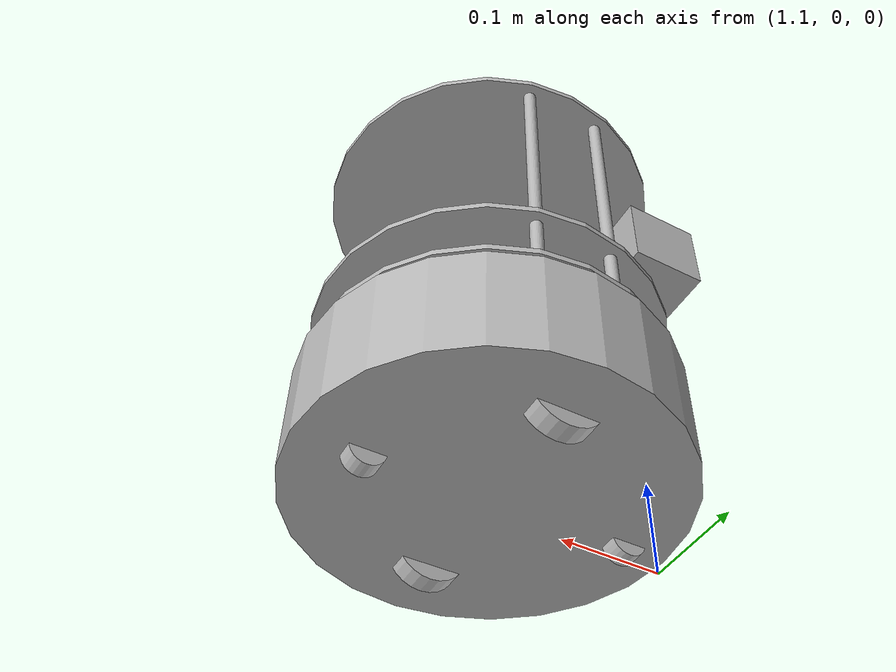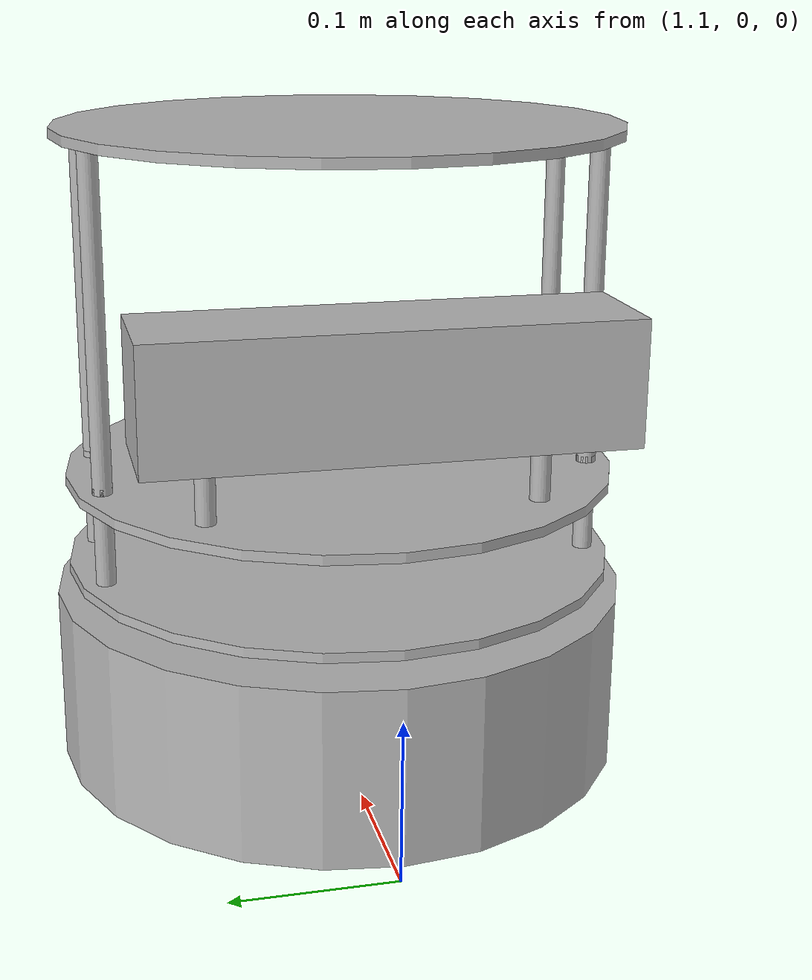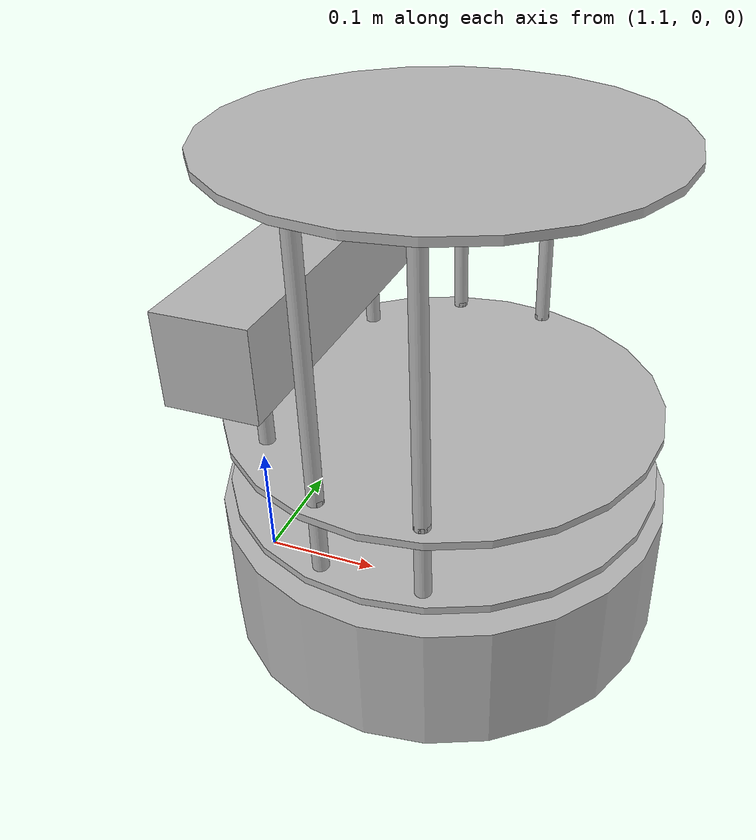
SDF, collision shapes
<?xml version="1.0" ?>
<sdf version="1.4">
  <model name="turtlebot1">
 	<!-- TURTLEBOT 1 -->
      <link name='base_foot1print'>
      <pose>1.27 0 0 0 -0 0</pose>
        <inertial>
          <pose>0.00947362 2.50779e-05 0.014919 0 -0 0</pose>
          <mass>2.4723</mass>
          <inertia>
            <ixx>0.0578436</ixx>
            <ixy>-2.91646e-06</ixy>
            <ixz>0.000317338</ixz>
            <iyy>0.0579316</iyy>
            <iyz>-9.59821e-07</iyz>
            <izz>0.0719963</izz>
          </inertia>
        </inertial>
        <collision name='base_foot1print_collision_base_link'>
          <pose>0 0 0.06969 0 -0 0</pose>
          <geometry>
            <cylinder>
              <length>0.10938</length>
              <radius>0.178</radius>
            </cylinder>
          </geometry>
          <surface>
            <contact>
              <ode/>
            </contact>
            <friction>
              <ode>
                <mu>0.3</mu>
                <mu2>0.3</mu2>
              </ode>
            </friction>
            <bounce/>
          </surface>
          <max_contacts>10</max_contacts>
        </collision>
        <collision name='base_foot1print_collision_camera_link'>
          <pose>-0.118 0 0.2812 0 -0 0</pose>
          <geometry>
            <box>
              <size>0.07271 0.27794 0.073</size>
            </box>
          </geometry>
          <surface>
            <contact>
              <ode/>
            </contact>
            <friction>
              <ode/>
            </friction>
            <bounce/>
          </surface>
          <max_contacts>10</max_contacts>
        </collision>
        <collision name='base_foot1print_collision_caster_back_link'>
          <pose>-0.135 0 0.0192 -1.5708 0 0</pose>
          <geometry>
            <cylinder>
              <length>0.0176</length>
              <radius>0.017</radius>
            </cylinder>
          </geometry>
          <surface>
            <contact>
              <ode>
                <kp>1e+06</kp>
                <kd>100</kd>
                <max_vel>1</max_vel>
                <min_depth>0.001</min_depth>
              </ode>
            </contact>
            <friction>
              <ode>
                <mu>0</mu>
                <mu2>0</mu2>
              </ode>
            </friction>
            <bounce/>
          </surface>
          <max_contacts>10</max_contacts>
        </collision>
        <collision name='base_foot1print_collision_caster_front_link'>
          <pose>0.115 0 0.0172 -1.5708 0 0</pose>
          <geometry>
            <cylinder>
              <length>0.0176</length>
              <radius>0.017</radius>
            </cylinder>
          </geometry>
          <surface>
            <contact>
              <ode>
                <kp>1e+06</kp>
                <kd>100</kd>
                <max_vel>1</max_vel>
                <min_depth>0.001</min_depth>
              </ode>
            </contact>
            <friction>
              <ode>
                <mu>0</mu>
                <mu2>0</mu2>
              </ode>
            </friction>
            <bounce/>
          </surface>
          <max_contacts>10</max_contacts>
        </collision>
        <collision name='base_foot1print_collision_plate_bottom_link'>
          <pose>0 0 0.1408 0 -0 0</pose>
          <geometry>
            <cylinder>
              <length>0.006</length>
              <radius>0.17</radius>
            </cylinder>
          </geometry>
          <max_contacts>10</max_contacts>
          <surface>
            <bounce/>
            <friction>
              <ode/>
            </friction>
            <contact>
              <ode/>
            </contact>
          </surface>
        </collision>
        <collision name='base_foot1print_collision_plate_middle_link'>
          <pose>0 0 0.1976 0 -0 0</pose>
          <geometry>
            <cylinder>
              <length>0.006</length>
              <radius>0.17</radius>
            </cylinder>
          </geometry>
          <max_contacts>10</max_contacts>
          <surface>
            <bounce/>
            <friction>
              <ode/>
            </friction>
            <contact>
              <ode/>
            </contact>
          </surface>
        </collision>
        <collision name='base_foot1print_collision_plate_top_link'>
          <pose>0 0 0.4068 0 -0 0</pose>
          <geometry>
            <cylinder>
              <length>0.006</length>
              <radius>0.17</radius>
            </cylinder>
          </geometry>
          <max_contacts>10</max_contacts>
          <surface>
            <bounce/>
            <friction>
              <ode/>
            </friction>
            <contact>
              <ode/>
            </contact>
          </surface>
        </collision>
        <collision name='base_foot1print_collision_pole_bottom_0_link'>
          <pose>0.12 0.082 0.113 0 -0 0</pose>
          <geometry>
            <cylinder>
              <length>0.0492</length>
              <radius>0.006</radius>
            </cylinder>
          </geometry>
          <max_contacts>10</max_contacts>
          <surface>
            <bounce/>
            <friction>
              <ode/>
            </friction>
            <contact>
              <ode/>
            </contact>
          </surface>
        </collision>
        <collision name='base_foot1print_collision_pole_bottom_1_link'>
          <pose>0.055 0.12 0.113 0 -0 0</pose>
          <geometry>
            <cylinder>
              <length>0.0492</length>
              <radius>0.006</radius>
            </cylinder>
          </geometry>
          <max_contacts>10</max_contacts>
          <surface>
            <bounce/>
            <friction>
              <ode/>
            </friction>
            <contact>
              <ode/>
            </contact>
          </surface>
        </collision>
        <collision name='base_foot1print_collision_pole_bottom_2_link'>
          <pose>-0.055 0.12 0.113 0 -0 0</pose>
          <geometry>
            <cylinder>
              <length>0.0492</length>
              <radius>0.006</radius>
            </cylinder>
          </geometry>
          <max_contacts>10</max_contacts>
          <surface>
            <bounce/>
            <friction>
              <ode/>
            </friction>
            <contact>
              <ode/>
            </contact>
          </surface>
        </collision>
        <collision name='base_foot1print_collision_pole_bottom_3_link'>
          <pose>0.12 -0.082 0.113 0 -0 0</pose>
          <geometry>
            <cylinder>
              <length>0.0492</length>
              <radius>0.006</radius>
            </cylinder>
          </geometry>
          <max_contacts>10</max_contacts>
          <surface>
            <bounce/>
            <friction>
              <ode/>
            </friction>
            <contact>
              <ode/>
            </contact>
          </surface>
        </collision>
        <collision name='base_foot1print_collision_pole_bottom_4_link'>
          <pose>0.055 -0.12 0.113 0 -0 0</pose>
          <geometry>
            <cylinder>
              <length>0.0492</length>
              <radius>0.006</radius>
            </cylinder>
          </geometry>
          <max_contacts>10</max_contacts>
          <surface>
            <bounce/>
            <friction>
              <ode/>
            </friction>
            <contact>
              <ode/>
            </contact>
          </surface>
        </collision>
        <collision name='base_foot1print_collision_pole_bottom_5_link'>
          <pose>-0.055 -0.12 0.113 0 -0 0</pose>
          <geometry>
            <cylinder>
              <length>0.0492</length>
              <radius>0.006</radius>
            </cylinder>
          </geometry>
          <max_contacts>10</max_contacts>
          <surface>
            <bounce/>
            <friction>
              <ode/>
            </friction>
            <contact>
              <ode/>
            </contact>
          </surface>
        </collision>
        <collision name='base_foot1print_collision_pole_kinect_0_link'>
          <pose>-0.1024 0.098 0.2474 0 -0 0</pose>
          <geometry>
            <cylinder>
              <length>0.0936</length>
              <radius>0.006</radius>
            </cylinder>
          </geometry>
          <max_contacts>10</max_contacts>
          <surface>
            <bounce/>
            <friction>
              <ode/>
            </friction>
            <contact>
              <ode/>
            </contact>
          </surface>
        </collision>
        <collision name='base_foot1print_collision_pole_kinect_1_link'>
          <pose>-0.1024 -0.098 0.2474 0 -0 0</pose>
          <geometry>
            <cylinder>
              <length>0.0936</length>
              <radius>0.006</radius>
            </cylinder>
          </geometry>
          <max_contacts>10</max_contacts>
          <surface>
            <bounce/>
            <friction>
              <ode/>
            </friction>
            <contact>
              <ode/>
            </contact>
          </surface>
        </collision>
        <collision name='base_foot1print_collision_pole_middle_0_link'>
          <pose>0.0381 0.1505 0.1742 0 -0 0</pose>
          <geometry>
            <cylinder>
              <length>0.0608</length>
              <radius>0.006</radius>
            </cylinder>
          </geometry>
          <max_contacts>10</max_contacts>
          <surface>
            <bounce/>
            <friction>
              <ode/>
            </friction>
            <contact>
              <ode/>
            </contact>
          </surface>
        </collision>
        <collision name='base_foot1print_collision_pole_middle_1_link'>
          <pose>0.0381 -0.1505 0.1742 0 -0 0</pose>
          <geometry>
            <cylinder>
              <length>0.0608</length>
              <radius>0.006</radius>
            </cylinder>
          </geometry>
          <max_contacts>10</max_contacts>
          <surface>
            <bounce/>
            <friction>
              <ode/>
            </friction>
            <contact>
              <ode/>
            </contact>
          </surface>
        </collision>
        <collision name='base_foot1print_collision_pole_middle_2_link'>
          <pose>-0.0381 0.1505 0.1742 0 -0 0</pose>
          <geometry>
            <cylinder>
              <length>0.0608</length>
              <radius>0.006</radius>
            </cylinder>
          </geometry>
          <max_contacts>10</max_contacts>
          <surface>
            <bounce/>
            <friction>
              <ode/>
            </friction>
            <contact>
              <ode/>
            </contact>
          </surface>
        </collision>
        <collision name='base_foot1print_collision_pole_middle_3_link'>
          <pose>-0.0381 -0.1505 0.1742 0 -0 0</pose>
          <geometry>
            <cylinder>
              <length>0.0608</length>
              <radius>0.006</radius>
            </cylinder>
          </geometry>
          <max_contacts>10</max_contacts>
          <surface>
            <bounce/>
            <friction>
              <ode/>
            </friction>
            <contact>
              <ode/>
            </contact>
          </surface>
        </collision>
        <collision name='base_foot1print_collision_pole_top_0_link'>
          <pose>0.0381 0.1505 0.3022 0 -0 0</pose>
          <geometry>
            <cylinder>
              <length>0.2032</length>
              <radius>0.006</radius>
            </cylinder>
          </geometry>
          <max_contacts>10</max_contacts>
          <surface>
            <bounce/>
            <friction>
              <ode/>
            </friction>
            <contact>
              <ode/>
            </contact>
          </surface>
        </collision>
        <collision name='base_foot1print_collision_pole_top_1_link'>
          <pose>0.0381 -0.1505 0.3022 0 -0 0</pose>
          <geometry>
            <cylinder>
              <length>0.2032</length>
              <radius>0.006</radius>
            </cylinder>
          </geometry>
          <max_contacts>10</max_contacts>
          <surface>
            <bounce/>
            <friction>
              <ode/>
            </friction>
            <contact>
              <ode/>
            </contact>
          </surface>
        </collision>
        <collision name='base_foot1print_collision_pole_top_2_link'>
          <pose>-0.0381 0.1505 0.3022 0 -0 0</pose>
          <geometry>
            <cylinder>
              <length>0.2032</length>
              <radius>0.006</radius>
            </cylinder>
          </geometry>
          <max_contacts>10</max_contacts>
          <surface>
            <bounce/>
            <friction>
              <ode/>
            </friction>
            <contact>
              <ode/>
            </contact>
          </surface>
        </collision>
        <collision name='base_foot1print_collision_pole_top_3_link'>
          <pose>-0.0381 -0.1505 0.3022 0 -0 0</pose>
          <geometry>
            <cylinder>
              <length>0.2032</length>
              <radius>0.006</radius>
            </cylinder>
          </geometry>
          <max_contacts>10</max_contacts>
          <surface>
            <bounce/>
            <friction>
              <ode/>
            </friction>
            <contact>
              <ode/>
            </contact>
          </surface>
        </collision>
        <visual name='base_foot1print_visual_base_link'>
          <pose>0.001 0 0.06219 0 -0 0</pose>
          <geometry>
            <mesh>
              <scale>1 1 1</scale>
              <uri>/opt/ros/indigo/share/kobuki_description/meshes/main_body.dae</uri>
            </mesh>
          </geometry>
        </visual>
        <visual name='base_foot1print_visual_camera_link'>
          <pose>-0.118 0 0.2812 0 -0 1.5708</pose>
          <geometry>
            <mesh>
              <scale>1 1 1</scale>
              <uri>/opt/ros/indigo/share/turtlebot_description/meshes/sensors/kinect.dae</uri>
            </mesh>
          </geometry>
        </visual>
        <visual name='base_foot1print_visual_plate_bottom_link'>
          <pose>0.02364 0 0.1408 0 -0 0</pose>
          <geometry>
            <mesh>
              <scale>1 1 1</scale>
              <uri>/opt/ros/indigo/share/turtlebot_description/meshes/stacks/hexagons/plate_bottom.dae</uri>
            </mesh>
          </geometry>
        </visual>
        <visual name='base_foot1print_visual_plate_middle_link'>
          <pose>-0.01364 0 0.1976 0 -0 0</pose>
          <geometry>
            <mesh>
              <scale>1 1 1</scale>
              <uri>/opt/ros/indigo/share/turtlebot_description/meshes/stacks/hexagons/plate_middle.dae</uri>
            </mesh>
          </geometry>
        </visual>
        <visual name='base_foot1print_visual_plate_top_link'>
          <pose>-0.01364 0 0.4068 0 -0 0</pose>
          <geometry>
            <mesh>
              <scale>1 1 1</scale>
              <uri>/opt/ros/indigo/share/turtlebot_description/meshes/stacks/hexagons/plate_top.dae</uri>
            </mesh>
          </geometry>
        </visual>
        <visual name='base_foot1print_visual_pole_bottom_0_link'>
          <pose>0.12 0.082 0.113 0 -0 0</pose>
          <geometry>
            <mesh>
              <scale>1 1 1</scale>
              <uri>/opt/ros/indigo/share/turtlebot_description/meshes/stacks/hexagons/pole_bottom.dae</uri>
            </mesh>
          </geometry>
        </visual>
        <visual name='base_foot1print_visual_pole_bottom_1_link'>
          <pose>0.055 0.12 0.113 0 -0 0</pose>
          <geometry>
            <mesh>
              <scale>1 1 1</scale>
              <uri>/opt/ros/indigo/share/turtlebot_description/meshes/stacks/hexagons/pole_bottom.dae</uri>
            </mesh>
          </geometry>
        </visual>
        <visual name='base_foot1print_visual_pole_bottom_2_link'>
          <pose>-0.055 0.12 0.113 0 -0 0</pose>
          <geometry>
            <mesh>
              <scale>1 1 1</scale>
              <uri>/opt/ros/indigo/share/turtlebot_description/meshes/stacks/hexagons/pole_bottom.dae</uri>
            </mesh>
          </geometry>
        </visual>
        <visual name='base_foot1print_visual_pole_bottom_3_link'>
          <pose>0.12 -0.082 0.113 0 -0 0</pose>
          <geometry>
            <mesh>
              <scale>1 1 1</scale>
              <uri>/opt/ros/indigo/share/turtlebot_description/meshes/stacks/hexagons/pole_bottom.dae</uri>
            </mesh>
          </geometry>
        </visual>
        <visual name='base_foot1print_visual_pole_bottom_4_link'>
          <pose>0.055 -0.12 0.113 0 -0 0</pose>
          <geometry>
            <mesh>
              <scale>1 1 1</scale>
              <uri>/opt/ros/indigo/share/turtlebot_description/meshes/stacks/hexagons/pole_bottom.dae</uri>
            </mesh>
          </geometry>
        </visual>
        <visual name='base_foot1print_visual_pole_bottom_5_link'>
          <pose>-0.055 -0.12 0.113 0 -0 0</pose>
          <geometry>
            <mesh>
              <scale>1 1 1</scale>
              <uri>/opt/ros/indigo/share/turtlebot_description/meshes/stacks/hexagons/pole_bottom.dae</uri>
            </mesh>
          </geometry>
        </visual>
        <visual name='base_foot1print_visual_pole_kinect_0_link'>
          <pose>-0.1024 0.098 0.2474 0 -0 0</pose>
          <geometry>
            <mesh>
              <scale>1 1 1</scale>
              <uri>/opt/ros/indigo/share/turtlebot_description/meshes/stacks/hexagons/pole_kinect.dae</uri>
            </mesh>
          </geometry>
        </visual>
        <visual name='base_foot1print_visual_pole_kinect_1_link'>
          <pose>-0.1024 -0.098 0.2474 0 -0 0</pose>
          <geometry>
            <mesh>
              <scale>1 1 1</scale>
              <uri>/opt/ros/indigo/share/turtlebot_description/meshes/stacks/hexagons/pole_kinect.dae</uri>
            </mesh>
          </geometry>
        </visual>
        <visual name='base_foot1print_visual_pole_middle_0_link'>
          <pose>0.0381 0.1505 0.1742 3.14159 -2.06823e-13 3.14159</pose>
          <geometry>
            <mesh>
              <scale>1 1 1</scale>
              <uri>/opt/ros/indigo/share/turtlebot_description/meshes/stacks/hexagons/pole_middle.dae</uri>
            </mesh>
          </geometry>
        </visual>
        <visual name='base_foot1print_visual_pole_middle_1_link'>
          <pose>0.0381 -0.1505 0.1742 3.14159 -2.06823e-13 3.14159</pose>
          <geometry>
            <mesh>
              <scale>1 1 1</scale>
              <uri>/opt/ros/indigo/share/turtlebot_description/meshes/stacks/hexagons/pole_middle.dae</uri>
            </mesh>
          </geometry>
        </visual>
        <visual name='base_foot1print_visual_pole_middle_2_link'>
          <pose>-0.0381 0.1505 0.1742 3.14159 -2.06823e-13 3.14159</pose>
          <geometry>
            <mesh>
              <scale>1 1 1</scale>
              <uri>/opt/ros/indigo/share/turtlebot_description/meshes/stacks/hexagons/pole_middle.dae</uri>
            </mesh>
          </geometry>
        </visual>
        <visual name='base_foot1print_visual_pole_middle_3_link'>
          <pose>-0.0381 -0.1505 0.1742 3.14159 -2.06823e-13 3.14159</pose>
          <geometry>
            <mesh>
              <scale>1 1 1</scale>
              <uri>/opt/ros/indigo/share/turtlebot_description/meshes/stacks/hexagons/pole_middle.dae</uri>
            </mesh>
          </geometry>
        </visual>
        <visual name='base_foot1print_visual_pole_top_0_link'>
          <pose>0.0381 0.1505 0.3022 0 -0 0</pose>
          <geometry>
            <mesh>
              <scale>1 1 1</scale>
              <uri>/opt/ros/indigo/share/turtlebot_description/meshes/stacks/hexagons/pole_top.dae</uri>
            </mesh>
          </geometry>
        </visual>
        <visual name='base_foot1print_visual_pole_top_1_link'>
          <pose>0.0381 -0.1505 0.3022 0 -0 0</pose>
          <geometry>
            <mesh>
              <scale>1 1 1</scale>
              <uri>/opt/ros/indigo/share/turtlebot_description/meshes/stacks/hexagons/pole_top.dae</uri>
            </mesh>
          </geometry>
        </visual>
        <visual name='base_foot1print_visual_pole_top_2_link'>
          <pose>-0.0381 0.1505 0.3022 0 -0 0</pose>
          <geometry>
            <mesh>
              <scale>1 1 1</scale>
              <uri>/opt/ros/indigo/share/turtlebot_description/meshes/stacks/hexagons/pole_top.dae</uri>
            </mesh>
          </geometry>
        </visual>
        <visual name='base_foot1print_visual_pole_top_3_link'>
          <pose>-0.0381 -0.1505 0.3022 0 -0 0</pose>
          <geometry>
            <mesh>
              <scale>1 1 1</scale>
              <uri>/opt/ros/indigo/share/turtlebot_description/meshes/stacks/hexagons/pole_top.dae</uri>
            </mesh>
          </geometry>
        </visual>
        <velocity_decay>
          <linear>0</linear>
          <angular>0</angular>
        </velocity_decay>
        <sensor name='bumpers' type='contact'>
          <always_on>1</always_on>
          <update_rate>50</update_rate>
          <visualize>1</visualize>
          <contact>
            <collision>base_foot1print_collision_base_link</collision>
            <topic>__default_topic__</topic>
          </contact>
          <pose>0 0 0.0102 0 -0 0</pose>
        </sensor>
        <velocity_decay>
          <linear>0</linear>
          <angular>0</angular>
        </velocity_decay>
        <sensor name='camera' type='depth'>
          <always_on>1</always_on>
          <update_rate>20</update_rate>
          <camera name='__default__'>
            <horizontal_fov>1.0472</horizontal_fov>
            <image>
              <format>R8G8B8</format>
              <width>640</width>
              <height>480</height>
            </image>
            <clip>
              <near>0.05</near>
              <far>8</far>
            </clip>
          </camera>
          <plugin name='kinect_camera_controller' filename='libgazebo_ros_openni_kinect.so'>
            <robotNamespace>/turtle1</robotNamespace>
            <cameraName>camera</cameraName>
            <alwaysOn>true</alwaysOn>
            <updateRate>30</updateRate>
            <imageTopicName>rgb/image_raw</imageTopicName>
            <depthImageTopicName>depth/image_raw</depthImageTopicName>
            <pointCloudTopicName>depth/points</pointCloudTopicName>
            <cameraInfoTopicName>rgb/camera_info</cameraInfoTopicName>
            <depthImageCameraInfoTopicName>depth/camera_info</depthImageCameraInfoTopicName>
            <frameName>camera_depth_optical_frame</frameName>
            <baseline>0.1</baseline>
            <distortion_k1>0.0</distortion_k1>
            <distortion_k2>0.0</distortion_k2>
            <distortion_k3>0.0</distortion_k3>
            <distortion_t1>0.0</distortion_t1>
            <distortion_t2>0.0</distortion_t2>
            <pointCloudCutoff>0.4</pointCloudCutoff>
          </plugin>
          <pose>-0.118 -0.01 0.2812 0 -0 0</pose>
        </sensor>
        <velocity_decay>
          <linear>0</linear>
          <angular>0</angular>
        </velocity_decay>
        <velocity_decay>
          <linear>0</linear>
          <angular>0</angular>
        </velocity_decay>
        <velocity_decay>
          <linear>0</linear>
          <angular>0</angular>
        </velocity_decay>
        <sensor name='cliff_sensor_front' type='ray'>
          <always_on>1</always_on>
          <update_rate>50</update_rate>
          <visualize>1</visualize>
          <ray>
            <scan>
              <horizontal>
                <samples>50</samples>
                <resolution>1</resolution>
                <min_angle>-0.0436</min_angle>
                <max_angle>0.0436</max_angle>
              </horizontal>
            </scan>
            <range>
              <min>0.01</min>
              <max>0.15</max>
              <resolution>1</resolution>
            </range>
          </ray>
          <pose>0.156 0 0.0316 3.14159 1.57079 3.14159</pose>
        </sensor>
        <velocity_decay>
          <linear>0</linear>
          <angular>0</angular>
        </velocity_decay>
        <sensor name='cliff_sensor_left' type='ray'>
          <always_on>1</always_on>
          <update_rate>50</update_rate>
          <visualize>1</visualize>
          <ray>
            <scan>
              <horizontal>
                <samples>50</samples>
                <resolution>1</resolution>
                <min_angle>-0.0436</min_angle>
                <max_angle>0.0436</max_angle>
              </horizontal>
            </scan>
            <range>
              <min>0.01</min>
              <max>0.15</max>
              <resolution>1</resolution>
            </range>
          </ray>
          <pose>0.08734 0.13601 0.0316 3.14159 1.57079 3.14159</pose>
        </sensor>
        <velocity_decay>
          <linear>0</linear>
          <angular>0</angular>
        </velocity_decay>
        <sensor name='cliff_sensor_right' type='ray'>
          <always_on>1</always_on>
          <update_rate>50</update_rate>
          <visualize>1</visualize>
          <ray>
            <scan>
              <horizontal>
                <samples>50</samples>
                <resolution>1</resolution>
                <min_angle>-0.0436</min_angle>
                <max_angle>0.0436</max_angle>
              </horizontal>
            </scan>
            <range>
              <min>0.01</min>
              <max>0.15</max>
              <resolution>1</resolution>
            </range>
          </ray>
          <pose>0.085 -0.13601 0.0316 3.14159 1.57079 3.14159</pose>
        </sensor>
        <gravity>1</gravity>
        <velocity_decay>
          <linear>0</linear>
          <angular>0</angular>
        </velocity_decay>
        <self_collide>0</self_collide>
        <sensor name='imu' type='imu'>
          <always_on>1</always_on>
          <update_rate>50</update_rate>
          <visualize>0</visualize>
          <imu>
            <noise>
              <type>gaussian</type>
              <rate>
                <mean>0</mean>
                <stddev>1.96e-06</stddev>
                <bias_mean>0</bias_mean>
                <bias_stddev>0</bias_stddev>
              </rate>
              <accel>
                <mean>0</mean>
                <stddev>0.017</stddev>
                <bias_mean>0.1</bias_mean>
                <bias_stddev>0.001</bias_stddev>
              </accel>
            </noise>
          </imu>
          <pose>0.056 0.062 0.0304 0 -0 0</pose>
        </sensor>
        <kinematic>0</kinematic>
      </link>
      <link name='wheel1_left_link'>
        <pose>1.27 0.115 0.0352 -1.5708 0 0</pose>
        <inertial>
          <pose>0 0 0 0 -0 0</pose>
          <mass>0.01</mass>
          <inertia>
            <ixx>0.001</ixx>
            <ixy>0</ixy>
            <ixz>0</ixz>
            <iyy>0.001</iyy>
            <iyz>0</iyz>
            <izz>0.001</izz>
          </inertia>
        </inertial>
        <collision name='wheel1_left_link_collision'>
          <pose>0 0 0 0 -0 0</pose>
          <geometry>
            <cylinder>
              <length>0.0206</length>
              <radius>0.0352</radius>
            </cylinder>
          </geometry>
          <surface>
            <contact>
              <ode>
                <kp>1e+06</kp>
                <kd>100</kd>
                <max_vel>1</max_vel>
                <min_depth>0.001</min_depth>
              </ode>
            </contact>
            <friction>
              <ode>
                <mu>1</mu>
                <mu2>1</mu2>
              </ode>
            </friction>
            <bounce/>
          </surface>
          <max_contacts>10</max_contacts>
        </collision>
        <visual name='wheel1_left_link_visual'>
          <pose>0 0 0 0 -0 0</pose>
          <geometry>
            <mesh>
              <scale>1 1 1</scale>
              <uri>/opt/ros/indigo/share/kobuki_description/meshes/wheel.dae</uri>
            </mesh>
          </geometry>
        </visual>
        <gravity>1</gravity>
        <velocity_decay>
          <linear>0</linear>
          <angular>0</angular>
        </velocity_decay>
        <self_collide>0</self_collide>
        <kinematic>0</kinematic>
      </link>
      <joint name='wheel1_left_joint' type='revolute'>
        <child>wheel1_left_link</child>
        <parent>base_foot1print</parent>
        <axis>
          <xyz>0 1 0</xyz>
          <limit>
            <lower>-1e+16</lower>
            <upper>1e+16</upper>
          </limit>
        </axis>
      </joint>
      <link name='wheel1_right_link'>
        <pose>1.27 -0.115 0.0352 -1.5708 0 0</pose>
        <inertial>
          <pose>0 0 0 0 -0 0</pose>
          <mass>0.01</mass>
          <inertia>
            <ixx>0.001</ixx>
            <ixy>0</ixy>
            <ixz>0</ixz>
            <iyy>0.001</iyy>
            <iyz>0</iyz>
            <izz>0.001</izz>
          </inertia>
        </inertial>
        <collision name='wheel1_right_link_collision'>
          <pose>0 0 0 0 -0 0</pose>
          <geometry>
            <cylinder>
              <length>0.0206</length>
              <radius>0.035</radius>
            </cylinder>
          </geometry>
          <surface>
            <contact>
              <ode>
                <kp>1e+06</kp>
                <kd>100</kd>
                <max_vel>1</max_vel>
                <min_depth>0.001</min_depth>
              </ode>
            </contact>
            <friction>
              <ode>
                <mu>1</mu>
                <mu2>1</mu2>
              </ode>
            </friction>
            <bounce/>
          </surface>
          <max_contacts>10</max_contacts>
        </collision>
        <visual name='wheel1_right_link_visual'>
          <pose>0 0 0 0 -0 0</pose>
          <geometry>
            <mesh>
              <scale>1 1 1</scale>
              <uri>/opt/ros/indigo/share/kobuki_description/meshes/wheel.dae</uri>
            </mesh>
          </geometry>
        </visual>
        <gravity>1</gravity>
        <velocity_decay>
          <linear>0</linear>
          <angular>0</angular>
        </velocity_decay>
        <self_collide>0</self_collide>
        <kinematic>0</kinematic>
      </link>
      <joint name='wheel1_right_joint' type='revolute'>
        <child>wheel1_right_link</child>
        <parent>base_foot1print</parent>
        <axis>
          <xyz>0 1 0</xyz>
          <limit>
            <lower>-1e+16</lower>
            <upper>1e+16</upper>
          </limit>
        </axis>
      </joint>
      <static>0</static>
      <plugin name='kobuki1_controller' filename='libgazebo_ros_diff_drive.so'>
        <publish_tf>1</publish_tf>
        <leftJoint>wheel1_right_joint</leftJoint>
        <rightJoint>wheel1_left_joint</rightJoint>
        <wheelSeparation>.230</wheelSeparation>
        <wheelDiameter>0.070</wheelDiameter>
        <wheelTorque>1.0</wheelTorque>
        <velocity_command_timeout>0.6</velocity_command_timeout>
        <cliff_sensor_left_name>cliff_sensor_left</cliff_sensor_left_name>
        <cliff_sensor_center_name>cliff_sensor_front</cliff_sensor_center_name>
        <cliff_sensor_right_name>cliff_sensor_right</cliff_sensor_right_name>
        <cliff_detection_threshold>0.04</cliff_detection_threshold>
        <bumper_name>bumpers</bumper_name>
        <imu_name>imu</imu_name>
        <robotNamespace>/turtle1</robotNamespace>
      </plugin>
  </model>
</sdf>
